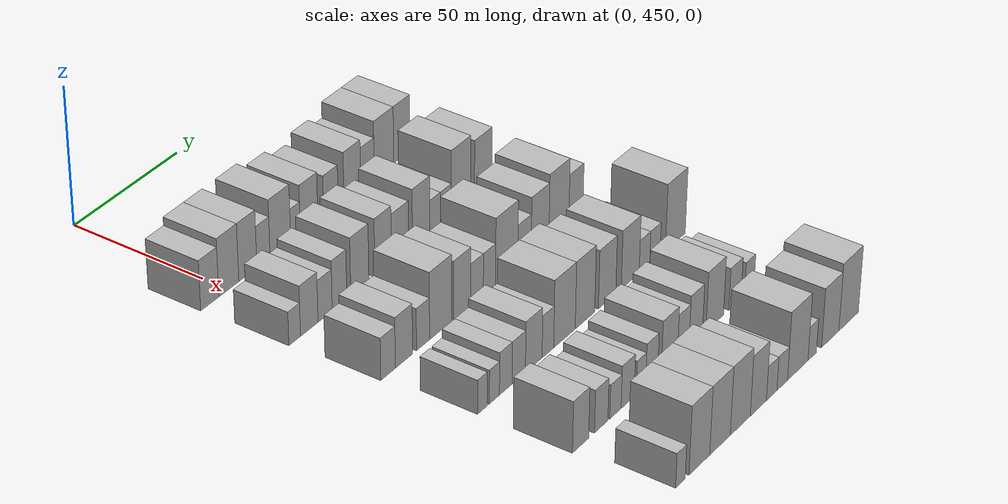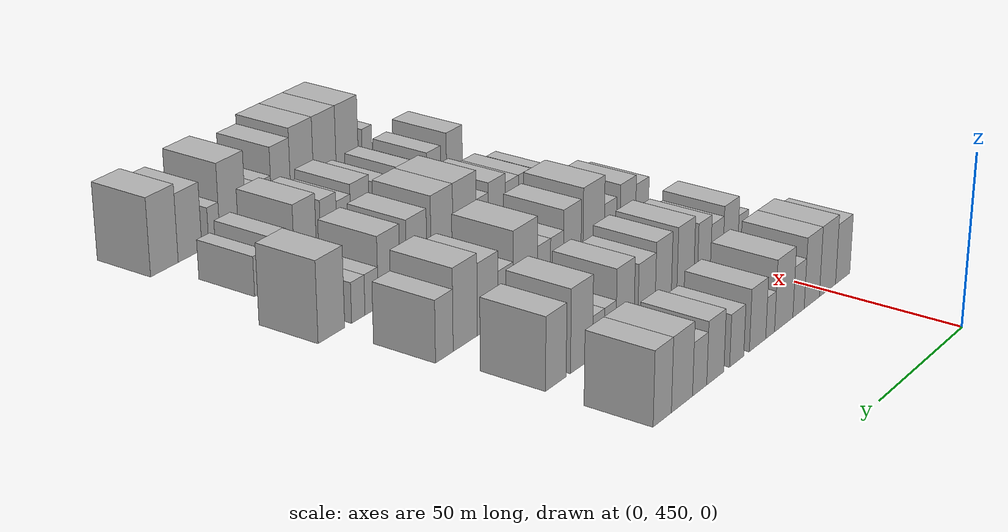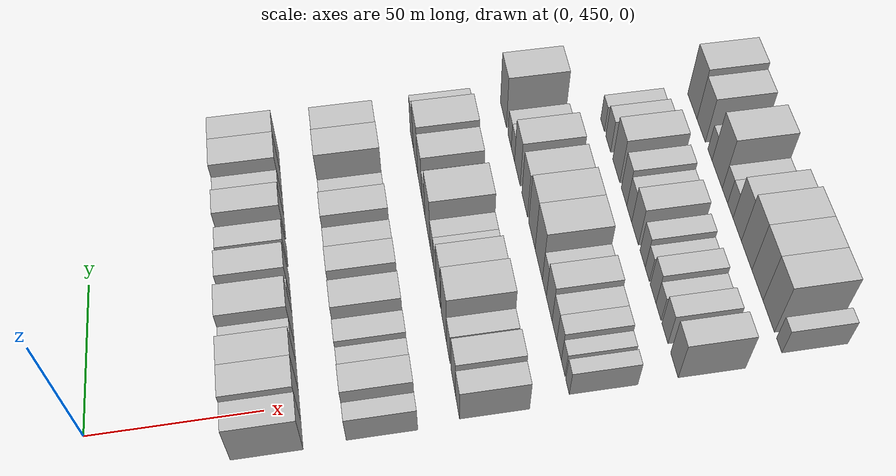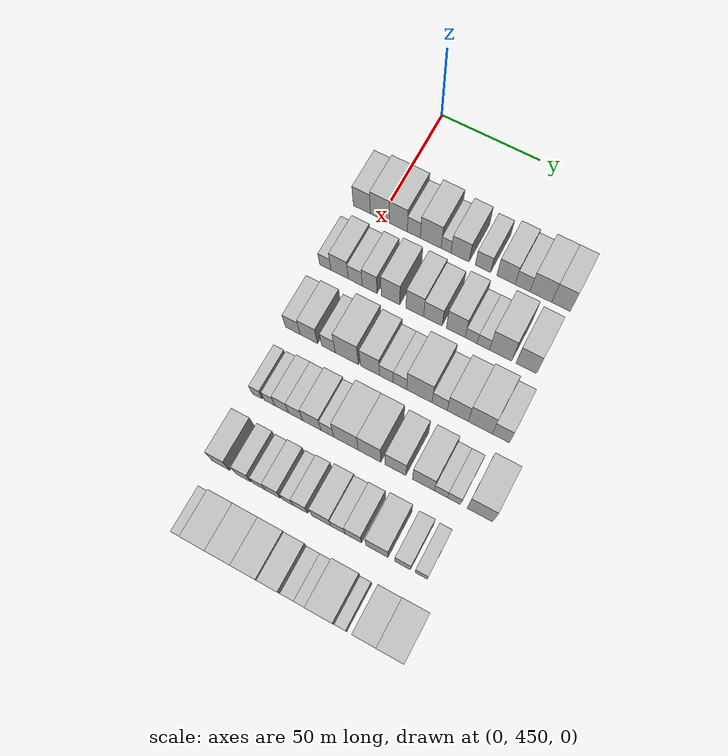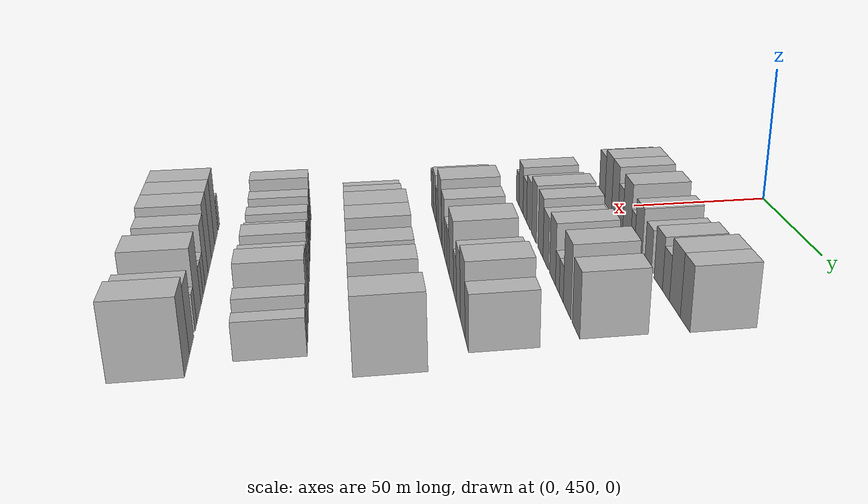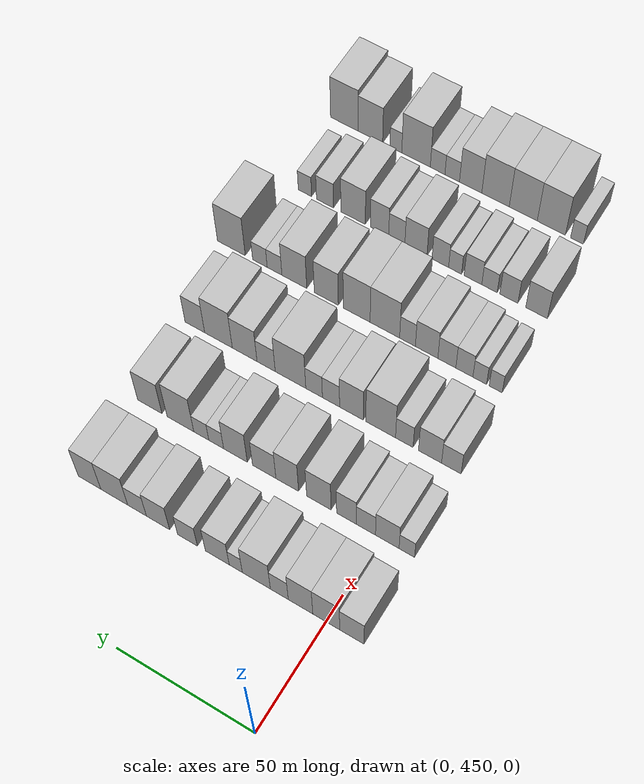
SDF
<sdf version="1.6">
 <world name="default">
  <model name="building_109">
   <static>1</static>
   <pose>50.0000 440.8322 0 0.000000 0.000000 0.000000</pose>
   <link name="link">
    <pose>0 0 9.00 0 0 0</pose>
    <collision name="collision"><geometry><box><size>20.0000 8.6715 18.0000</size></box></geometry></collision>
    <visual name="visual">
     <cast_shadows>0</cast_shadows>
     <geometry><box><size>20.0000 8.6715 18.0000</size></box></geometry>
     <material>
      <script>
       <uri>model://HANNAS_wall/materials/scripts</uri>
       <uri>model://HANNAS_wall/materials/textures</uri>
       <name>vrc/HANNAS_wall</name>
      </script>
     </material>
    </visual>
   </link>
  </model>
  <model name="building_110">
   <static>1</static>
   <pose>50.0000 450.0034 0 0.000000 0.000000 0.000000</pose>
   <link name="link">
    <pose>0 0 10.50 0 0 0</pose>
    <collision name="collision"><geometry><box><size>20.0000 9.6709 21.0000</size></box></geometry></collision>
    <visual name="visual">
     <cast_shadows>0</cast_shadows>
     <geometry><box><size>20.0000 9.6709 21.0000</size></box></geometry>
     <material>
      <script>
       <uri>model://HANNAS_wall/materials/scripts</uri>
       <uri>model://HANNAS_wall/materials/textures</uri>
       <name>vrc/HANNAS_wall</name>
      </script>
     </material>
    </visual>
   </link>
  </model>
  <model name="building_111">
   <static>1</static>
   <pose>50.0000 459.2815 0 0.000000 0.000000 0.000000</pose>
   <link name="link">
    <pose>0 0 10.50 0 0 0</pose>
    <collision name="collision"><geometry><box><size>20.0000 8.8854 21.0000</size></box></geometry></collision>
    <visual name="visual">
     <cast_shadows>0</cast_shadows>
     <geometry><box><size>20.0000 8.8854 21.0000</size></box></geometry>
     <material>
      <script>
       <uri>model://HANNAS_wall/materials/scripts</uri>
       <uri>model://HANNAS_wall/materials/textures</uri>
       <name>vrc/HANNAS_wall</name>
      </script>
     </material>
    </visual>
   </link>
  </model>
  <model name="building_112">
   <static>1</static>
   <pose>50.0000 466.9771 0 0.000000 0.000000 0.000000</pose>
   <link name="link">
    <pose>0 0 7.50 0 0 0</pose>
    <collision name="collision"><geometry><box><size>20.0000 6.5057 15.0000</size></box></geometry></collision>
    <visual name="visual">
     <cast_shadows>0</cast_shadows>
     <geometry><box><size>20.0000 6.5057 15.0000</size></box></geometry>
     <material>
      <script>
       <uri>model://HANNAS_wall/materials/scripts</uri>
       <uri>model://HANNAS_wall/materials/textures</uri>
       <name>vrc/HANNAS_wall</name>
      </script>
     </material>
    </visual>
   </link>
  </model>
  <model name="building_113">
   <static>1</static>
   <pose>50.0000 475.3938 0 0.000000 0.000000 0.000000</pose>
   <link name="link">
    <pose>0 0 10.50 0 0 0</pose>
    <collision name="collision"><geometry><box><size>20.0000 10.3277 21.0000</size></box></geometry></collision>
    <visual name="visual">
     <cast_shadows>0</cast_shadows>
     <geometry><box><size>20.0000 10.3277 21.0000</size></box></geometry>
     <material>
      <script>
       <uri>model://HANNAS_wall/materials/scripts</uri>
       <uri>model://HANNAS_wall/materials/textures</uri>
       <name>vrc/HANNAS_wall</name>
      </script>
     </material>
    </visual>
   </link>
  </model>
  <model name="building_114">
   <static>1</static>
   <pose>50.0000 482.9818 0 0.000000 0.000000 0.000000</pose>
   <link name="link">
    <pose>0 0 6.00 0 0 0</pose>
    <collision name="collision"><geometry><box><size>20.0000 4.8483 12.0000</size></box></geometry></collision>
    <visual name="visual">
     <cast_shadows>0</cast_shadows>
     <geometry><box><size>20.0000 4.8483 12.0000</size></box></geometry>
     <material>
      <script>
       <uri>model://HANNAS_wall/materials/scripts</uri>
       <uri>model://HANNAS_wall/materials/textures</uri>
       <name>vrc/HANNAS_wall</name>
      </script>
     </material>
    </visual>
   </link>
  </model>
  <model name="building_115">
   <static>1</static>
   <pose>50.0000 489.8653 0 0.000000 0.000000 0.000000</pose>
   <link name="link">
    <pose>0 0 9.00 0 0 0</pose>
    <collision name="collision"><geometry><box><size>20.0000 8.9188 18.0000</size></box></geometry></collision>
    <visual name="visual">
     <cast_shadows>0</cast_shadows>
     <geometry><box><size>20.0000 8.9188 18.0000</size></box></geometry>
     <material>
      <script>
       <uri>model://HANNAS_wall/materials/scripts</uri>
       <uri>model://HANNAS_wall/materials/textures</uri>
       <name>vrc/HANNAS_wall</name>
      </script>
     </material>
    </visual>
   </link>
  </model>
  <model name="building_116">
   <static>1</static>
   <pose>50.0000 501.0590 0 0.000000 0.000000 0.000000</pose>
   <link name="link">
    <pose>0 0 7.50 0 0 0</pose>
    <collision name="collision"><geometry><box><size>20.0000 7.4686 15.0000</size></box></geometry></collision>
    <visual name="visual">
     <cast_shadows>0</cast_shadows>
     <geometry><box><size>20.0000 7.4686 15.0000</size></box></geometry>
     <material>
      <script>
       <uri>model://HANNAS_wall/materials/scripts</uri>
       <uri>model://HANNAS_wall/materials/textures</uri>
       <name>vrc/HANNAS_wall</name>
      </script>
     </material>
    </visual>
   </link>
  </model>
  <model name="building_117">
   <static>1</static>
   <pose>50.0000 512.2028 0 0.000000 0.000000 0.000000</pose>
   <link name="link">
    <pose>0 0 9.00 0 0 0</pose>
    <collision name="collision"><geometry><box><size>20.0000 8.8191 18.0000</size></box></geometry></collision>
    <visual name="visual">
     <cast_shadows>0</cast_shadows>
     <geometry><box><size>20.0000 8.8191 18.0000</size></box></geometry>
     <material>
      <script>
       <uri>model://HANNAS_wall/materials/scripts</uri>
       <uri>model://HANNAS_wall/materials/textures</uri>
       <name>vrc/HANNAS_wall</name>
      </script>
     </material>
    </visual>
   </link>
  </model>
  <model name="building_118">
   <static>1</static>
   <pose>50.0000 520.1855 0 0.000000 0.000000 0.000000</pose>
   <link name="link">
    <pose>0 0 7.50 0 0 0</pose>
    <collision name="collision"><geometry><box><size>20.0000 7.1463 15.0000</size></box></geometry></collision>
    <visual name="visual">
     <cast_shadows>0</cast_shadows>
     <geometry><box><size>20.0000 7.1463 15.0000</size></box></geometry>
     <material>
      <script>
       <uri>model://HANNAS_wall/materials/scripts</uri>
       <uri>model://HANNAS_wall/materials/textures</uri>
       <name>vrc/HANNAS_wall</name>
      </script>
     </material>
    </visual>
   </link>
  </model>
  <model name="building_119">
   <static>1</static>
   <pose>50.0000 528.9667 0 0.000000 0.000000 0.000000</pose>
   <link name="link">
    <pose>0 0 10.50 0 0 0</pose>
    <collision name="collision"><geometry><box><size>20.0000 10.4160 21.0000</size></box></geometry></collision>
    <visual name="visual">
     <cast_shadows>0</cast_shadows>
     <geometry><box><size>20.0000 10.4160 21.0000</size></box></geometry>
     <material>
      <script>
       <uri>model://HANNAS_wall/materials/scripts</uri>
       <uri>model://HANNAS_wall/materials/textures</uri>
       <name>vrc/HANNAS_wall</name>
      </script>
     </material>
    </visual>
   </link>
  </model>
  <model name="building_120">
   <static>1</static>
   <pose>50.0000 538.5762 0 0.000000 0.000000 0.000000</pose>
   <link name="link">
    <pose>0 0 10.50 0 0 0</pose>
    <collision name="collision"><geometry><box><size>20.0000 8.8031 21.0000</size></box></geometry></collision>
    <visual name="visual">
     <cast_shadows>0</cast_shadows>
     <geometry><box><size>20.0000 8.8031 21.0000</size></box></geometry>
     <material>
      <script>
       <uri>model://HANNAS_wall/materials/scripts</uri>
       <uri>model://HANNAS_wall/materials/textures</uri>
       <name>vrc/HANNAS_wall</name>
      </script>
     </material>
    </visual>
   </link>
  </model>
  <model name="building_237">
   <static>1</static>
   <pose>82.0000 440.2561 0 0.000000 0.000000 0.000000</pose>
   <link name="link">
    <pose>0 0 6.00 0 0 0</pose>
    <collision name="collision"><geometry><box><size>20.0000 5.6234 12.0000</size></box></geometry></collision>
    <visual name="visual">
     <cast_shadows>0</cast_shadows>
     <geometry><box><size>20.0000 5.6234 12.0000</size></box></geometry>
     <material>
      <script>
       <uri>model://HANNAS_wall/materials/scripts</uri>
       <uri>model://HANNAS_wall/materials/textures</uri>
       <name>vrc/HANNAS_wall</name>
      </script>
     </material>
    </visual>
   </link>
  </model>
  <model name="building_238">
   <static>1</static>
   <pose>82.0000 447.3569 0 0.000000 0.000000 0.000000</pose>
   <link name="link">
    <pose>0 0 9.00 0 0 0</pose>
    <collision name="collision"><geometry><box><size>20.0000 8.5782 18.0000</size></box></geometry></collision>
    <visual name="visual">
     <cast_shadows>0</cast_shadows>
     <geometry><box><size>20.0000 8.5782 18.0000</size></box></geometry>
     <material>
      <script>
       <uri>model://HANNAS_wall/materials/scripts</uri>
       <uri>model://HANNAS_wall/materials/textures</uri>
       <name>vrc/HANNAS_wall</name>
      </script>
     </material>
    </visual>
   </link>
  </model>
  <model name="building_239">
   <static>1</static>
   <pose>82.0000 455.1612 0 0.000000 0.000000 0.000000</pose>
   <link name="link">
    <pose>0 0 7.50 0 0 0</pose>
    <collision name="collision"><geometry><box><size>20.0000 7.0303 15.0000</size></box></geometry></collision>
    <visual name="visual">
     <cast_shadows>0</cast_shadows>
     <geometry><box><size>20.0000 7.0303 15.0000</size></box></geometry>
     <material>
      <script>
       <uri>model://HANNAS_wall/materials/scripts</uri>
       <uri>model://HANNAS_wall/materials/textures</uri>
       <name>vrc/HANNAS_wall</name>
      </script>
     </material>
    </visual>
   </link>
  </model>
  <model name="building_240">
   <static>1</static>
   <pose>82.0000 462.3118 0 0.000000 0.000000 0.000000</pose>
   <link name="link">
    <pose>0 0 9.00 0 0 0</pose>
    <collision name="collision"><geometry><box><size>20.0000 7.2710 18.0000</size></box></geometry></collision>
    <visual name="visual">
     <cast_shadows>0</cast_shadows>
     <geometry><box><size>20.0000 7.2710 18.0000</size></box></geometry>
     <material>
      <script>
       <uri>model://HANNAS_wall/materials/scripts</uri>
       <uri>model://HANNAS_wall/materials/textures</uri>
       <name>vrc/HANNAS_wall</name>
      </script>
     </material>
    </visual>
   </link>
  </model>
  <model name="building_241">
   <static>1</static>
   <pose>82.0000 472.5132 0 0.000000 0.000000 0.000000</pose>
   <link name="link">
    <pose>0 0 10.50 0 0 0</pose>
    <collision name="collision"><geometry><box><size>20.0000 9.1317 21.0000</size></box></geometry></collision>
    <visual name="visual">
     <cast_shadows>0</cast_shadows>
     <geometry><box><size>20.0000 9.1317 21.0000</size></box></geometry>
     <material>
      <script>
       <uri>model://HANNAS_wall/materials/scripts</uri>
       <uri>model://HANNAS_wall/materials/textures</uri>
       <name>vrc/HANNAS_wall</name>
      </script>
     </material>
    </visual>
   </link>
  </model>
  <model name="building_242">
   <static>1</static>
   <pose>82.0000 484.3540 0 0.000000 0.000000 0.000000</pose>
   <link name="link">
    <pose>0 0 10.50 0 0 0</pose>
    <collision name="collision"><geometry><box><size>20.0000 8.5499 21.0000</size></box></geometry></collision>
    <visual name="visual">
     <cast_shadows>0</cast_shadows>
     <geometry><box><size>20.0000 8.5499 21.0000</size></box></geometry>
     <material>
      <script>
       <uri>model://HANNAS_wall/materials/scripts</uri>
       <uri>model://HANNAS_wall/materials/textures</uri>
       <name>vrc/HANNAS_wall</name>
      </script>
     </material>
    </visual>
   </link>
  </model>
  <model name="building_243">
   <static>1</static>
   <pose>82.0000 493.0721 0 0.000000 0.000000 0.000000</pose>
   <link name="link">
    <pose>0 0 9.00 0 0 0</pose>
    <collision name="collision"><geometry><box><size>20.0000 8.8865 18.0000</size></box></geometry></collision>
    <visual name="visual">
     <cast_shadows>0</cast_shadows>
     <geometry><box><size>20.0000 8.8865 18.0000</size></box></geometry>
     <material>
      <script>
       <uri>model://HANNAS_wall/materials/scripts</uri>
       <uri>model://HANNAS_wall/materials/textures</uri>
       <name>vrc/HANNAS_wall</name>
      </script>
     </material>
    </visual>
   </link>
  </model>
  <model name="building_244">
   <static>1</static>
   <pose>82.0000 504.0475 0 0.000000 0.000000 0.000000</pose>
   <link name="link">
    <pose>0 0 10.50 0 0 0</pose>
    <collision name="collision"><geometry><box><size>20.0000 9.0643 21.0000</size></box></geometry></collision>
    <visual name="visual">
     <cast_shadows>0</cast_shadows>
     <geometry><box><size>20.0000 9.0643 21.0000</size></box></geometry>
     <material>
      <script>
       <uri>model://HANNAS_wall/materials/scripts</uri>
       <uri>model://HANNAS_wall/materials/textures</uri>
       <name>vrc/HANNAS_wall</name>
      </script>
     </material>
    </visual>
   </link>
  </model>
  <model name="building_245">
   <static>1</static>
   <pose>82.0000 511.4496 0 0.000000 0.000000 0.000000</pose>
   <link name="link">
    <pose>0 0 6.00 0 0 0</pose>
    <collision name="collision"><geometry><box><size>20.0000 5.7400 12.0000</size></box></geometry></collision>
    <visual name="visual">
     <cast_shadows>0</cast_shadows>
     <geometry><box><size>20.0000 5.7400 12.0000</size></box></geometry>
     <material>
      <script>
       <uri>model://HANNAS_wall/materials/scripts</uri>
       <uri>model://HANNAS_wall/materials/textures</uri>
       <name>vrc/HANNAS_wall</name>
      </script>
     </material>
    </visual>
   </link>
  </model>
  <model name="building_246">
   <static>1</static>
   <pose>82.0000 517.2201 0 0.000000 0.000000 0.000000</pose>
   <link name="link">
    <pose>0 0 6.00 0 0 0</pose>
    <collision name="collision"><geometry><box><size>20.0000 5.8009 12.0000</size></box></geometry></collision>
    <visual name="visual">
     <cast_shadows>0</cast_shadows>
     <geometry><box><size>20.0000 5.8009 12.0000</size></box></geometry>
     <material>
      <script>
       <uri>model://HANNAS_wall/materials/scripts</uri>
       <uri>model://HANNAS_wall/materials/textures</uri>
       <name>vrc/HANNAS_wall</name>
      </script>
     </material>
    </visual>
   </link>
  </model>
  <model name="building_247">
   <static>1</static>
   <pose>82.0000 525.3493 0 0.000000 0.000000 0.000000</pose>
   <link name="link">
    <pose>0 0 12.00 0 0 0</pose>
    <collision name="collision"><geometry><box><size>20.0000 10.4574 24.0000</size></box></geometry></collision>
    <visual name="visual">
     <cast_shadows>0</cast_shadows>
     <geometry><box><size>20.0000 10.4574 24.0000</size></box></geometry>
     <material>
      <script>
       <uri>model://HANNAS_wall/materials/scripts</uri>
       <uri>model://HANNAS_wall/materials/textures</uri>
       <name>vrc/HANNAS_wall</name>
      </script>
     </material>
    </visual>
   </link>
  </model>
  <model name="building_248">
   <static>1</static>
   <pose>82.0000 537.3769 0 0.000000 0.000000 0.000000</pose>
   <link name="link">
    <pose>0 0 10.50 0 0 0</pose>
    <collision name="collision"><geometry><box><size>20.0000 9.5978 21.0000</size></box></geometry></collision>
    <visual name="visual">
     <cast_shadows>0</cast_shadows>
     <geometry><box><size>20.0000 9.5978 21.0000</size></box></geometry>
     <material>
      <script>
       <uri>model://HANNAS_wall/materials/scripts</uri>
       <uri>model://HANNAS_wall/materials/textures</uri>
       <name>vrc/HANNAS_wall</name>
      </script>
     </material>
    </visual>
   </link>
  </model>
  <model name="building_354">
   <static>1</static>
   <pose>114.0000 442.5730 0 0.000000 0.000000 0.000000</pose>
   <link name="link">
    <pose>0 0 7.50 0 0 0</pose>
    <collision name="collision"><geometry><box><size>20.0000 7.1990 15.0000</size></box></geometry></collision>
    <visual name="visual">
     <cast_shadows>0</cast_shadows>
     <geometry><box><size>20.0000 7.1990 15.0000</size></box></geometry>
     <material>
      <script>
       <uri>model://HANNAS_wall/materials/scripts</uri>
       <uri>model://HANNAS_wall/materials/textures</uri>
       <name>vrc/HANNAS_wall</name>
      </script>
     </material>
    </visual>
   </link>
  </model>
  <model name="building_355">
   <static>1</static>
   <pose>114.0000 450.4455 0 0.000000 0.000000 0.000000</pose>
   <link name="link">
    <pose>0 0 9.00 0 0 0</pose>
    <collision name="collision"><geometry><box><size>20.0000 8.5460 18.0000</size></box></geometry></collision>
    <visual name="visual">
     <cast_shadows>0</cast_shadows>
     <geometry><box><size>20.0000 8.5460 18.0000</size></box></geometry>
     <material>
      <script>
       <uri>model://HANNAS_wall/materials/scripts</uri>
       <uri>model://HANNAS_wall/materials/textures</uri>
       <name>vrc/HANNAS_wall</name>
      </script>
     </material>
    </visual>
   </link>
  </model>
  <model name="building_356">
   <static>1</static>
   <pose>114.0000 460.0045 0 0.000000 0.000000 0.000000</pose>
   <link name="link">
    <pose>0 0 7.50 0 0 0</pose>
    <collision name="collision"><geometry><box><size>20.0000 6.5721 15.0000</size></box></geometry></collision>
    <visual name="visual">
     <cast_shadows>0</cast_shadows>
     <geometry><box><size>20.0000 6.5721 15.0000</size></box></geometry>
     <material>
      <script>
       <uri>model://HANNAS_wall/materials/scripts</uri>
       <uri>model://HANNAS_wall/materials/textures</uri>
       <name>vrc/HANNAS_wall</name>
      </script>
     </material>
    </visual>
   </link>
  </model>
  <model name="building_357">
   <static>1</static>
   <pose>114.0000 468.8829 0 0.000000 0.000000 0.000000</pose>
   <link name="link">
    <pose>0 0 12.00 0 0 0</pose>
    <collision name="collision"><geometry><box><size>20.0000 11.1846 24.0000</size></box></geometry></collision>
    <visual name="visual">
     <cast_shadows>0</cast_shadows>
     <geometry><box><size>20.0000 11.1846 24.0000</size></box></geometry>
     <material>
      <script>
       <uri>model://HANNAS_wall/materials/scripts</uri>
       <uri>model://HANNAS_wall/materials/textures</uri>
       <name>vrc/HANNAS_wall</name>
      </script>
     </material>
    </visual>
   </link>
  </model>
  <model name="building_358">
   <static>1</static>
   <pose>114.0000 479.9621 0 0.000000 0.000000 0.000000</pose>
   <link name="link">
    <pose>0 0 10.50 0 0 0</pose>
    <collision name="collision"><geometry><box><size>20.0000 8.9737 21.0000</size></box></geometry></collision>
    <visual name="visual">
     <cast_shadows>0</cast_shadows>
     <geometry><box><size>20.0000 8.9737 21.0000</size></box></geometry>
     <material>
      <script>
       <uri>model://HANNAS_wall/materials/scripts</uri>
       <uri>model://HANNAS_wall/materials/textures</uri>
       <name>vrc/HANNAS_wall</name>
      </script>
     </material>
    </visual>
   </link>
  </model>
  <model name="building_359">
   <static>1</static>
   <pose>114.0000 487.7368 0 0.000000 0.000000 0.000000</pose>
   <link name="link">
    <pose>0 0 7.50 0 0 0</pose>
    <collision name="collision"><geometry><box><size>20.0000 6.5757 15.0000</size></box></geometry></collision>
    <visual name="visual">
     <cast_shadows>0</cast_shadows>
     <geometry><box><size>20.0000 6.5757 15.0000</size></box></geometry>
     <material>
      <script>
       <uri>model://HANNAS_wall/materials/scripts</uri>
       <uri>model://HANNAS_wall/materials/textures</uri>
       <name>vrc/HANNAS_wall</name>
      </script>
     </material>
    </visual>
   </link>
  </model>
  <model name="building_360">
   <static>1</static>
   <pose>114.0000 494.2287 0 0.000000 0.000000 0.000000</pose>
   <link name="link">
    <pose>0 0 7.50 0 0 0</pose>
    <collision name="collision"><geometry><box><size>20.0000 6.4080 15.0000</size></box></geometry></collision>
    <visual name="visual">
     <cast_shadows>0</cast_shadows>
     <geometry><box><size>20.0000 6.4080 15.0000</size></box></geometry>
     <material>
      <script>
       <uri>model://HANNAS_wall/materials/scripts</uri>
       <uri>model://HANNAS_wall/materials/textures</uri>
       <name>vrc/HANNAS_wall</name>
      </script>
     </material>
    </visual>
   </link>
  </model>
  <model name="building_361">
   <static>1</static>
   <pose>114.0000 503.3774 0 0.000000 0.000000 0.000000</pose>
   <link name="link">
    <pose>0 0 12.00 0 0 0</pose>
    <collision name="collision"><geometry><box><size>20.0000 11.8895 24.0000</size></box></geometry></collision>
    <visual name="visual">
     <cast_shadows>0</cast_shadows>
     <geometry><box><size>20.0000 11.8895 24.0000</size></box></geometry>
     <material>
      <script>
       <uri>model://HANNAS_wall/materials/scripts</uri>
       <uri>model://HANNAS_wall/materials/textures</uri>
       <name>vrc/HANNAS_wall</name>
      </script>
     </material>
    </visual>
   </link>
  </model>
  <model name="building_362">
   <static>1</static>
   <pose>114.0000 512.8818 0 0.000000 0.000000 0.000000</pose>
   <link name="link">
    <pose>0 0 7.50 0 0 0</pose>
    <collision name="collision"><geometry><box><size>20.0000 7.1193 15.0000</size></box></geometry></collision>
    <visual name="visual">
     <cast_shadows>0</cast_shadows>
     <geometry><box><size>20.0000 7.1193 15.0000</size></box></geometry>
     <material>
      <script>
       <uri>model://HANNAS_wall/materials/scripts</uri>
       <uri>model://HANNAS_wall/materials/textures</uri>
       <name>vrc/HANNAS_wall</name>
      </script>
     </material>
    </visual>
   </link>
  </model>
  <model name="building_363">
   <static>1</static>
   <pose>114.0000 521.3224 0 0.000000 0.000000 0.000000</pose>
   <link name="link">
    <pose>0 0 10.50 0 0 0</pose>
    <collision name="collision"><geometry><box><size>20.0000 9.7618 21.0000</size></box></geometry></collision>
    <visual name="visual">
     <cast_shadows>0</cast_shadows>
     <geometry><box><size>20.0000 9.7618 21.0000</size></box></geometry>
     <material>
      <script>
       <uri>model://HANNAS_wall/materials/scripts</uri>
       <uri>model://HANNAS_wall/materials/textures</uri>
       <name>vrc/HANNAS_wall</name>
      </script>
     </material>
    </visual>
   </link>
  </model>
  <model name="building_364">
   <static>1</static>
   <pose>114.0000 531.7129 0 0.000000 0.000000 0.000000</pose>
   <link name="link">
    <pose>0 0 12.00 0 0 0</pose>
    <collision name="collision"><geometry><box><size>20.0000 11.0193 24.0000</size></box></geometry></collision>
    <visual name="visual">
     <cast_shadows>0</cast_shadows>
     <geometry><box><size>20.0000 11.0193 24.0000</size></box></geometry>
     <material>
      <script>
       <uri>model://HANNAS_wall/materials/scripts</uri>
       <uri>model://HANNAS_wall/materials/textures</uri>
       <name>vrc/HANNAS_wall</name>
      </script>
     </material>
    </visual>
   </link>
  </model>
  <model name="building_365">
   <static>1</static>
   <pose>114.0000 541.1586 0 0.000000 0.000000 0.000000</pose>
   <link name="link">
    <pose>0 0 9.00 0 0 0</pose>
    <collision name="collision"><geometry><box><size>20.0000 7.8720 18.0000</size></box></geometry></collision>
    <visual name="visual">
     <cast_shadows>0</cast_shadows>
     <geometry><box><size>20.0000 7.8720 18.0000</size></box></geometry>
     <material>
      <script>
       <uri>model://HANNAS_wall/materials/scripts</uri>
       <uri>model://HANNAS_wall/materials/textures</uri>
       <name>vrc/HANNAS_wall</name>
      </script>
     </material>
    </visual>
   </link>
  </model>
  <model name="building_479">
   <static>1</static>
   <pose>146.0000 444.1087 0 0.000000 0.000000 0.000000</pose>
   <link name="link">
    <pose>0 0 6.00 0 0 0</pose>
    <collision name="collision"><geometry><box><size>20.0000 4.8619 12.0000</size></box></geometry></collision>
    <visual name="visual">
     <cast_shadows>0</cast_shadows>
     <geometry><box><size>20.0000 4.8619 12.0000</size></box></geometry>
     <material>
      <script>
       <uri>model://HANNAS_wall/materials/scripts</uri>
       <uri>model://HANNAS_wall/materials/textures</uri>
       <name>vrc/HANNAS_wall</name>
      </script>
     </material>
    </visual>
   </link>
  </model>
  <model name="building_480">
   <static>1</static>
   <pose>146.0000 450.1096 0 0.000000 0.000000 0.000000</pose>
   <link name="link">
    <pose>0 0 6.00 0 0 0</pose>
    <collision name="collision"><geometry><box><size>20.0000 5.1399 12.0000</size></box></geometry></collision>
    <visual name="visual">
     <cast_shadows>0</cast_shadows>
     <geometry><box><size>20.0000 5.1399 12.0000</size></box></geometry>
     <material>
      <script>
       <uri>model://HANNAS_wall/materials/scripts</uri>
       <uri>model://HANNAS_wall/materials/textures</uri>
       <name>vrc/HANNAS_wall</name>
      </script>
     </material>
    </visual>
   </link>
  </model>
  <model name="building_481">
   <static>1</static>
   <pose>146.0000 455.9055 0 0.000000 0.000000 0.000000</pose>
   <link name="link">
    <pose>0 0 7.50 0 0 0</pose>
    <collision name="collision"><geometry><box><size>20.0000 6.4520 15.0000</size></box></geometry></collision>
    <visual name="visual">
     <cast_shadows>0</cast_shadows>
     <geometry><box><size>20.0000 6.4520 15.0000</size></box></geometry>
     <material>
      <script>
       <uri>model://HANNAS_wall/materials/scripts</uri>
       <uri>model://HANNAS_wall/materials/textures</uri>
       <name>vrc/HANNAS_wall</name>
      </script>
     </material>
    </visual>
   </link>
  </model>
  <model name="building_482">
   <static>1</static>
   <pose>146.0000 462.5545 0 0.000000 0.000000 0.000000</pose>
   <link name="link">
    <pose>0 0 7.50 0 0 0</pose>
    <collision name="collision"><geometry><box><size>20.0000 6.8459 15.0000</size></box></geometry></collision>
    <visual name="visual">
     <cast_shadows>0</cast_shadows>
     <geometry><box><size>20.0000 6.8459 15.0000</size></box></geometry>
     <material>
      <script>
       <uri>model://HANNAS_wall/materials/scripts</uri>
       <uri>model://HANNAS_wall/materials/textures</uri>
       <name>vrc/HANNAS_wall</name>
      </script>
     </material>
    </visual>
   </link>
  </model>
  <model name="building_483">
   <static>1</static>
   <pose>146.0000 470.2748 0 0.000000 0.000000 0.000000</pose>
   <link name="link">
    <pose>0 0 9.00 0 0 0</pose>
    <collision name="collision"><geometry><box><size>20.0000 8.5948 18.0000</size></box></geometry></collision>
    <visual name="visual">
     <cast_shadows>0</cast_shadows>
     <geometry><box><size>20.0000 8.5948 18.0000</size></box></geometry>
     <material>
      <script>
       <uri>model://HANNAS_wall/materials/scripts</uri>
       <uri>model://HANNAS_wall/materials/textures</uri>
       <name>vrc/HANNAS_wall</name>
      </script>
     </material>
    </visual>
   </link>
  </model>
  <model name="building_484">
   <static>1</static>
   <pose>146.0000 477.6124 0 0.000000 0.000000 0.000000</pose>
   <link name="link">
    <pose>0 0 7.50 0 0 0</pose>
    <collision name="collision"><geometry><box><size>20.0000 6.0803 15.0000</size></box></geometry></collision>
    <visual name="visual">
     <cast_shadows>0</cast_shadows>
     <geometry><box><size>20.0000 6.0803 15.0000</size></box></geometry>
     <material>
      <script>
       <uri>model://HANNAS_wall/materials/scripts</uri>
       <uri>model://HANNAS_wall/materials/textures</uri>
       <name>vrc/HANNAS_wall</name>
      </script>
     </material>
    </visual>
   </link>
  </model>
  <model name="building_485">
   <static>1</static>
   <pose>146.0000 486.3825 0 0.000000 0.000000 0.000000</pose>
   <link name="link">
    <pose>0 0 12.00 0 0 0</pose>
    <collision name="collision"><geometry><box><size>20.0000 11.4599 24.0000</size></box></geometry></collision>
    <visual name="visual">
     <cast_shadows>0</cast_shadows>
     <geometry><box><size>20.0000 11.4599 24.0000</size></box></geometry>
     <material>
      <script>
       <uri>model://HANNAS_wall/materials/scripts</uri>
       <uri>model://HANNAS_wall/materials/textures</uri>
       <name>vrc/HANNAS_wall</name>
      </script>
     </material>
    </visual>
   </link>
  </model>
  <model name="building_486">
   <static>1</static>
   <pose>146.0000 497.3469 0 0.000000 0.000000 0.000000</pose>
   <link name="link">
    <pose>0 0 12.00 0 0 0</pose>
    <collision name="collision"><geometry><box><size>20.0000 10.4688 24.0000</size></box></geometry></collision>
    <visual name="visual">
     <cast_shadows>0</cast_shadows>
     <geometry><box><size>20.0000 10.4688 24.0000</size></box></geometry>
     <material>
      <script>
       <uri>model://HANNAS_wall/materials/scripts</uri>
       <uri>model://HANNAS_wall/materials/textures</uri>
       <name>vrc/HANNAS_wall</name>
      </script>
     </material>
    </visual>
   </link>
  </model>
  <model name="building_487">
   <static>1</static>
   <pose>146.0000 509.3311 0 0.000000 0.000000 0.000000</pose>
   <link name="link">
    <pose>0 0 10.50 0 0 0</pose>
    <collision name="collision"><geometry><box><size>20.0000 9.4996 21.0000</size></box></geometry></collision>
    <visual name="visual">
     <cast_shadows>0</cast_shadows>
     <geometry><box><size>20.0000 9.4996 21.0000</size></box></geometry>
     <material>
      <script>
       <uri>model://HANNAS_wall/materials/scripts</uri>
       <uri>model://HANNAS_wall/materials/textures</uri>
       <name>vrc/HANNAS_wall</name>
      </script>
     </material>
    </visual>
   </link>
  </model>
  <model name="building_488">
   <static>1</static>
   <pose>146.0000 522.0644 0 0.000000 0.000000 0.000000</pose>
   <link name="link">
    <pose>0 0 10.50 0 0 0</pose>
    <collision name="collision"><geometry><box><size>20.0000 9.9670 21.0000</size></box></geometry></collision>
    <visual name="visual">
     <cast_shadows>0</cast_shadows>
     <geometry><box><size>20.0000 9.9670 21.0000</size></box></geometry>
     <material>
      <script>
       <uri>model://HANNAS_wall/materials/scripts</uri>
       <uri>model://HANNAS_wall/materials/textures</uri>
       <name>vrc/HANNAS_wall</name>
      </script>
     </material>
    </visual>
   </link>
  </model>
  <model name="building_489">
   <static>1</static>
   <pose>146.0000 530.0144 0 0.000000 0.000000 0.000000</pose>
   <link name="link">
    <pose>0 0 6.00 0 0 0</pose>
    <collision name="collision"><geometry><box><size>20.0000 5.9330 12.0000</size></box></geometry></collision>
    <visual name="visual">
     <cast_shadows>0</cast_shadows>
     <geometry><box><size>20.0000 5.9330 12.0000</size></box></geometry>
     <material>
      <script>
       <uri>model://HANNAS_wall/materials/scripts</uri>
       <uri>model://HANNAS_wall/materials/textures</uri>
       <name>vrc/HANNAS_wall</name>
      </script>
     </material>
    </visual>
   </link>
  </model>
  <model name="building_490">
   <static>1</static>
   <pose>146.0000 535.9261 0 0.000000 0.000000 0.000000</pose>
   <link name="link">
    <pose>0 0 6.00 0 0 0</pose>
    <collision name="collision"><geometry><box><size>20.0000 5.8904 12.0000</size></box></geometry></collision>
    <visual name="visual">
     <cast_shadows>0</cast_shadows>
     <geometry><box><size>20.0000 5.8904 12.0000</size></box></geometry>
     <material>
      <script>
       <uri>model://HANNAS_wall/materials/scripts</uri>
       <uri>model://HANNAS_wall/materials/textures</uri>
       <name>vrc/HANNAS_wall</name>
      </script>
     </material>
    </visual>
   </link>
  </model>
  <model name="building_491">
   <static>1</static>
   <pose>146.0000 547.5627 0 0.000000 0.000000 0.000000</pose>
   <link name="link">
    <pose>0 0 12.00 0 0 0</pose>
    <collision name="collision"><geometry><box><size>20.0000 11.3827 24.0000</size></box></geometry></collision>
    <visual name="visual">
     <cast_shadows>0</cast_shadows>
     <geometry><box><size>20.0000 11.3827 24.0000</size></box></geometry>
     <material>
      <script>
       <uri>model://HANNAS_wall/materials/scripts</uri>
       <uri>model://HANNAS_wall/materials/textures</uri>
       <name>vrc/HANNAS_wall</name>
      </script>
     </material>
    </visual>
   </link>
  </model>
  <model name="building_590">
   <static>1</static>
   <pose>178.0000 446.1948 0 0.000000 0.000000 0.000000</pose>
   <link name="link">
    <pose>0 0 9.00 0 0 0</pose>
    <collision name="collision"><geometry><box><size>20.0000 8.2813 18.0000</size></box></geometry></collision>
    <visual name="visual">
     <cast_shadows>0</cast_shadows>
     <geometry><box><size>20.0000 8.2813 18.0000</size></box></geometry>
     <material>
      <script>
       <uri>model://HANNAS_wall/materials/scripts</uri>
       <uri>model://HANNAS_wall/materials/textures</uri>
       <name>vrc/HANNAS_wall</name>
      </script>
     </material>
    </visual>
   </link>
  </model>
  <model name="building_591">
   <static>1</static>
   <pose>178.0000 456.8114 0 0.000000 0.000000 0.000000</pose>
   <link name="link">
    <pose>0 0 7.50 0 0 0</pose>
    <collision name="collision"><geometry><box><size>20.0000 6.9520 15.0000</size></box></geometry></collision>
    <visual name="visual">
     <cast_shadows>0</cast_shadows>
     <geometry><box><size>20.0000 6.9520 15.0000</size></box></geometry>
     <material>
      <script>
       <uri>model://HANNAS_wall/materials/scripts</uri>
       <uri>model://HANNAS_wall/materials/textures</uri>
       <name>vrc/HANNAS_wall</name>
      </script>
     </material>
    </visual>
   </link>
  </model>
  <model name="building_592">
   <static>1</static>
   <pose>178.0000 464.2608 0 0.000000 0.000000 0.000000</pose>
   <link name="link">
    <pose>0 0 6.00 0 0 0</pose>
    <collision name="collision"><geometry><box><size>20.0000 5.9468 12.0000</size></box></geometry></collision>
    <visual name="visual">
     <cast_shadows>0</cast_shadows>
     <geometry><box><size>20.0000 5.9468 12.0000</size></box></geometry>
     <material>
      <script>
       <uri>model://HANNAS_wall/materials/scripts</uri>
       <uri>model://HANNAS_wall/materials/textures</uri>
       <name>vrc/HANNAS_wall</name>
      </script>
     </material>
    </visual>
   </link>
  </model>
  <model name="building_593">
   <static>1</static>
   <pose>178.0000 470.6833 0 0.000000 0.000000 0.000000</pose>
   <link name="link">
    <pose>0 0 7.50 0 0 0</pose>
    <collision name="collision"><geometry><box><size>20.0000 6.8982 15.0000</size></box></geometry></collision>
    <visual name="visual">
     <cast_shadows>0</cast_shadows>
     <geometry><box><size>20.0000 6.8982 15.0000</size></box></geometry>
     <material>
      <script>
       <uri>model://HANNAS_wall/materials/scripts</uri>
       <uri>model://HANNAS_wall/materials/textures</uri>
       <name>vrc/HANNAS_wall</name>
      </script>
     </material>
    </visual>
   </link>
  </model>
  <model name="building_594">
   <static>1</static>
   <pose>178.0000 477.6623 0 0.000000 0.000000 0.000000</pose>
   <link name="link">
    <pose>0 0 6.00 0 0 0</pose>
    <collision name="collision"><geometry><box><size>20.0000 5.0598 12.0000</size></box></geometry></collision>
    <visual name="visual">
     <cast_shadows>0</cast_shadows>
     <geometry><box><size>20.0000 5.0598 12.0000</size></box></geometry>
     <material>
      <script>
       <uri>model://HANNAS_wall/materials/scripts</uri>
       <uri>model://HANNAS_wall/materials/textures</uri>
       <name>vrc/HANNAS_wall</name>
      </script>
     </material>
    </visual>
   </link>
  </model>
  <model name="building_595">
   <static>1</static>
   <pose>178.0000 483.4512 0 0.000000 0.000000 0.000000</pose>
   <link name="link">
    <pose>0 0 7.50 0 0 0</pose>
    <collision name="collision"><geometry><box><size>20.0000 6.5181 15.0000</size></box></geometry></collision>
    <visual name="visual">
     <cast_shadows>0</cast_shadows>
     <geometry><box><size>20.0000 6.5181 15.0000</size></box></geometry>
     <material>
      <script>
       <uri>model://HANNAS_wall/materials/scripts</uri>
       <uri>model://HANNAS_wall/materials/textures</uri>
       <name>vrc/HANNAS_wall</name>
      </script>
     </material>
    </visual>
   </link>
  </model>
  <model name="building_596">
   <static>1</static>
   <pose>178.0000 493.0791 0 0.000000 0.000000 0.000000</pose>
   <link name="link">
    <pose>0 0 9.00 0 0 0</pose>
    <collision name="collision"><geometry><box><size>20.0000 8.7376 18.0000</size></box></geometry></collision>
    <visual name="visual">
     <cast_shadows>0</cast_shadows>
     <geometry><box><size>20.0000 8.7376 18.0000</size></box></geometry>
     <material>
      <script>
       <uri>model://HANNAS_wall/materials/scripts</uri>
       <uri>model://HANNAS_wall/materials/textures</uri>
       <name>vrc/HANNAS_wall</name>
      </script>
     </material>
    </visual>
   </link>
  </model>
  <model name="building_597">
   <static>1</static>
   <pose>178.0000 500.6773 0 0.000000 0.000000 0.000000</pose>
   <link name="link">
    <pose>0 0 7.50 0 0 0</pose>
    <collision name="collision"><geometry><box><size>20.0000 6.4589 15.0000</size></box></geometry></collision>
    <visual name="visual">
     <cast_shadows>0</cast_shadows>
     <geometry><box><size>20.0000 6.4589 15.0000</size></box></geometry>
     <material>
      <script>
       <uri>model://HANNAS_wall/materials/scripts</uri>
       <uri>model://HANNAS_wall/materials/textures</uri>
       <name>vrc/HANNAS_wall</name>
      </script>
     </material>
    </visual>
   </link>
  </model>
  <model name="building_598">
   <static>1</static>
   <pose>178.0000 507.5917 0 0.000000 0.000000 0.000000</pose>
   <link name="link">
    <pose>0 0 9.00 0 0 0</pose>
    <collision name="collision"><geometry><box><size>20.0000 7.3699 18.0000</size></box></geometry></collision>
    <visual name="visual">
     <cast_shadows>0</cast_shadows>
     <geometry><box><size>20.0000 7.3699 18.0000</size></box></geometry>
     <material>
      <script>
       <uri>model://HANNAS_wall/materials/scripts</uri>
       <uri>model://HANNAS_wall/materials/textures</uri>
       <name>vrc/HANNAS_wall</name>
      </script>
     </material>
    </visual>
   </link>
  </model>
  <model name="building_599">
   <static>1</static>
   <pose>178.0000 518.2177 0 0.000000 0.000000 0.000000</pose>
   <link name="link">
    <pose>0 0 10.50 0 0 0</pose>
    <collision name="collision"><geometry><box><size>20.0000 9.8821 21.0000</size></box></geometry></collision>
    <visual name="visual">
     <cast_shadows>0</cast_shadows>
     <geometry><box><size>20.0000 9.8821 21.0000</size></box></geometry>
     <material>
      <script>
       <uri>model://HANNAS_wall/materials/scripts</uri>
       <uri>model://HANNAS_wall/materials/textures</uri>
       <name>vrc/HANNAS_wall</name>
      </script>
     </material>
    </visual>
   </link>
  </model>
  <model name="building_600">
   <static>1</static>
   <pose>178.0000 529.6419 0 0.000000 0.000000 0.000000</pose>
   <link name="link">
    <pose>0 0 7.50 0 0 0</pose>
    <collision name="collision"><geometry><box><size>20.0000 6.9661 15.0000</size></box></geometry></collision>
    <visual name="visual">
     <cast_shadows>0</cast_shadows>
     <geometry><box><size>20.0000 6.9661 15.0000</size></box></geometry>
     <material>
      <script>
       <uri>model://HANNAS_wall/materials/scripts</uri>
       <uri>model://HANNAS_wall/materials/textures</uri>
       <name>vrc/HANNAS_wall</name>
      </script>
     </material>
    </visual>
   </link>
  </model>
  <model name="building_601">
   <static>1</static>
   <pose>178.0000 537.8670 0 0.000000 0.000000 0.000000</pose>
   <link name="link">
    <pose>0 0 6.00 0 0 0</pose>
    <collision name="collision"><geometry><box><size>20.0000 5.4841 12.0000</size></box></geometry></collision>
    <visual name="visual">
     <cast_shadows>0</cast_shadows>
     <geometry><box><size>20.0000 5.4841 12.0000</size></box></geometry>
     <material>
      <script>
       <uri>model://HANNAS_wall/materials/scripts</uri>
       <uri>model://HANNAS_wall/materials/textures</uri>
       <name>vrc/HANNAS_wall</name>
      </script>
     </material>
    </visual>
   </link>
  </model>
  <model name="building_707">
   <static>1</static>
   <pose>210.0000 447.7335 0 0.000000 0.000000 0.000000</pose>
   <link name="link">
    <pose>0 0 6.00 0 0 0</pose>
    <collision name="collision"><geometry><box><size>20.0000 4.9888 12.0000</size></box></geometry></collision>
    <visual name="visual">
     <cast_shadows>0</cast_shadows>
     <geometry><box><size>20.0000 4.9888 12.0000</size></box></geometry>
     <material>
      <script>
       <uri>model://HANNAS_wall/materials/scripts</uri>
       <uri>model://HANNAS_wall/materials/textures</uri>
       <name>vrc/HANNAS_wall</name>
      </script>
     </material>
    </visual>
   </link>
  </model>
  <model name="building_708">
   <static>1</static>
   <pose>210.0000 457.7178 0 0.000000 0.000000 0.000000</pose>
   <link name="link">
    <pose>0 0 12.00 0 0 0</pose>
    <collision name="collision"><geometry><box><size>20.0000 10.9797 24.0000</size></box></geometry></collision>
    <visual name="visual">
     <cast_shadows>0</cast_shadows>
     <geometry><box><size>20.0000 10.9797 24.0000</size></box></geometry>
     <material>
      <script>
       <uri>model://HANNAS_wall/materials/scripts</uri>
       <uri>model://HANNAS_wall/materials/textures</uri>
       <name>vrc/HANNAS_wall</name>
      </script>
     </material>
    </visual>
   </link>
  </model>
  <model name="building_709">
   <static>1</static>
   <pose>210.0000 468.7299 0 0.000000 0.000000 0.000000</pose>
   <link name="link">
    <pose>0 0 12.00 0 0 0</pose>
    <collision name="collision"><geometry><box><size>20.0000 11.0444 24.0000</size></box></geometry></collision>
    <visual name="visual">
     <cast_shadows>0</cast_shadows>
     <geometry><box><size>20.0000 11.0444 24.0000</size></box></geometry>
     <material>
      <script>
       <uri>model://HANNAS_wall/materials/scripts</uri>
       <uri>model://HANNAS_wall/materials/textures</uri>
       <name>vrc/HANNAS_wall</name>
      </script>
     </material>
    </visual>
   </link>
  </model>
  <model name="building_710">
   <static>1</static>
   <pose>210.0000 479.7144 0 0.000000 0.000000 0.000000</pose>
   <link name="link">
    <pose>0 0 12.00 0 0 0</pose>
    <collision name="collision"><geometry><box><size>20.0000 10.9247 24.0000</size></box></geometry></collision>
    <visual name="visual">
     <cast_shadows>0</cast_shadows>
     <geometry><box><size>20.0000 10.9247 24.0000</size></box></geometry>
     <material>
      <script>
       <uri>model://HANNAS_wall/materials/scripts</uri>
       <uri>model://HANNAS_wall/materials/textures</uri>
       <name>vrc/HANNAS_wall</name>
      </script>
     </material>
    </visual>
   </link>
  </model>
  <model name="building_711">
   <static>1</static>
   <pose>210.0000 489.6423 0 0.000000 0.000000 0.000000</pose>
   <link name="link">
    <pose>0 0 10.50 0 0 0</pose>
    <collision name="collision"><geometry><box><size>20.0000 8.9309 21.0000</size></box></geometry></collision>
    <visual name="visual">
     <cast_shadows>0</cast_shadows>
     <geometry><box><size>20.0000 8.9309 21.0000</size></box></geometry>
     <material>
      <script>
       <uri>model://HANNAS_wall/materials/scripts</uri>
       <uri>model://HANNAS_wall/materials/textures</uri>
       <name>vrc/HANNAS_wall</name>
      </script>
     </material>
    </visual>
   </link>
  </model>
  <model name="building_712">
   <static>1</static>
   <pose>210.0000 497.0376 0 0.000000 0.000000 0.000000</pose>
   <link name="link">
    <pose>0 0 6.00 0 0 0</pose>
    <collision name="collision"><geometry><box><size>20.0000 5.8597 12.0000</size></box></geometry></collision>
    <visual name="visual">
     <cast_shadows>0</cast_shadows>
     <geometry><box><size>20.0000 5.8597 12.0000</size></box></geometry>
     <material>
      <script>
       <uri>model://HANNAS_wall/materials/scripts</uri>
       <uri>model://HANNAS_wall/materials/textures</uri>
       <name>vrc/HANNAS_wall</name>
      </script>
     </material>
    </visual>
   </link>
  </model>
  <model name="building_713">
   <static>1</static>
   <pose>210.0000 502.9386 0 0.000000 0.000000 0.000000</pose>
   <link name="link">
    <pose>0 0 6.00 0 0 0</pose>
    <collision name="collision"><geometry><box><size>20.0000 5.9423 12.0000</size></box></geometry></collision>
    <visual name="visual">
     <cast_shadows>0</cast_shadows>
     <geometry><box><size>20.0000 5.9423 12.0000</size></box></geometry>
     <material>
      <script>
       <uri>model://HANNAS_wall/materials/scripts</uri>
       <uri>model://HANNAS_wall/materials/textures</uri>
       <name>vrc/HANNAS_wall</name>
      </script>
     </material>
    </visual>
   </link>
  </model>
  <model name="building_714">
   <static>1</static>
   <pose>210.0000 511.7456 0 0.000000 0.000000 0.000000</pose>
   <link name="link">
    <pose>0 0 12.00 0 0 0</pose>
    <collision name="collision"><geometry><box><size>20.0000 11.6716 24.0000</size></box></geometry></collision>
    <visual name="visual">
     <cast_shadows>0</cast_shadows>
     <geometry><box><size>20.0000 11.6716 24.0000</size></box></geometry>
     <material>
      <script>
       <uri>model://HANNAS_wall/materials/scripts</uri>
       <uri>model://HANNAS_wall/materials/textures</uri>
       <name>vrc/HANNAS_wall</name>
      </script>
     </material>
    </visual>
   </link>
  </model>
  <model name="building_715">
   <static>1</static>
   <pose>210.0000 520.0132 0 0.000000 0.000000 0.000000</pose>
   <link name="link">
    <pose>0 0 6.00 0 0 0</pose>
    <collision name="collision"><geometry><box><size>20.0000 4.8636 12.0000</size></box></geometry></collision>
    <visual name="visual">
     <cast_shadows>0</cast_shadows>
     <geometry><box><size>20.0000 4.8636 12.0000</size></box></geometry>
     <material>
      <script>
       <uri>model://HANNAS_wall/materials/scripts</uri>
       <uri>model://HANNAS_wall/materials/textures</uri>
       <name>vrc/HANNAS_wall</name>
      </script>
     </material>
    </visual>
   </link>
  </model>
  <model name="building_716">
   <static>1</static>
   <pose>210.0000 530.5031 0 0.000000 0.000000 0.000000</pose>
   <link name="link">
    <pose>0 0 10.50 0 0 0</pose>
    <collision name="collision"><geometry><box><size>20.0000 10.1162 21.0000</size></box></geometry></collision>
    <visual name="visual">
     <cast_shadows>0</cast_shadows>
     <geometry><box><size>20.0000 10.1162 21.0000</size></box></geometry>
     <material>
      <script>
       <uri>model://HANNAS_wall/materials/scripts</uri>
       <uri>model://HANNAS_wall/materials/textures</uri>
       <name>vrc/HANNAS_wall</name>
      </script>
     </material>
    </visual>
   </link>
  </model>
  <model name="building_717">
   <static>1</static>
   <pose>210.0000 541.3260 0 0.000000 0.000000 0.000000</pose>
   <link name="link">
    <pose>0 0 12.00 0 0 0</pose>
    <collision name="collision"><geometry><box><size>20.0000 11.5294 24.0000</size></box></geometry></collision>
    <visual name="visual">
     <cast_shadows>0</cast_shadows>
     <geometry><box><size>20.0000 11.5294 24.0000</size></box></geometry>
     <material>
      <script>
       <uri>model://HANNAS_wall/materials/scripts</uri>
       <uri>model://HANNAS_wall/materials/textures</uri>
       <name>vrc/HANNAS_wall</name>
      </script>
     </material>
    </visual>
   </link>
  </model>
 </world>
</sdf>
